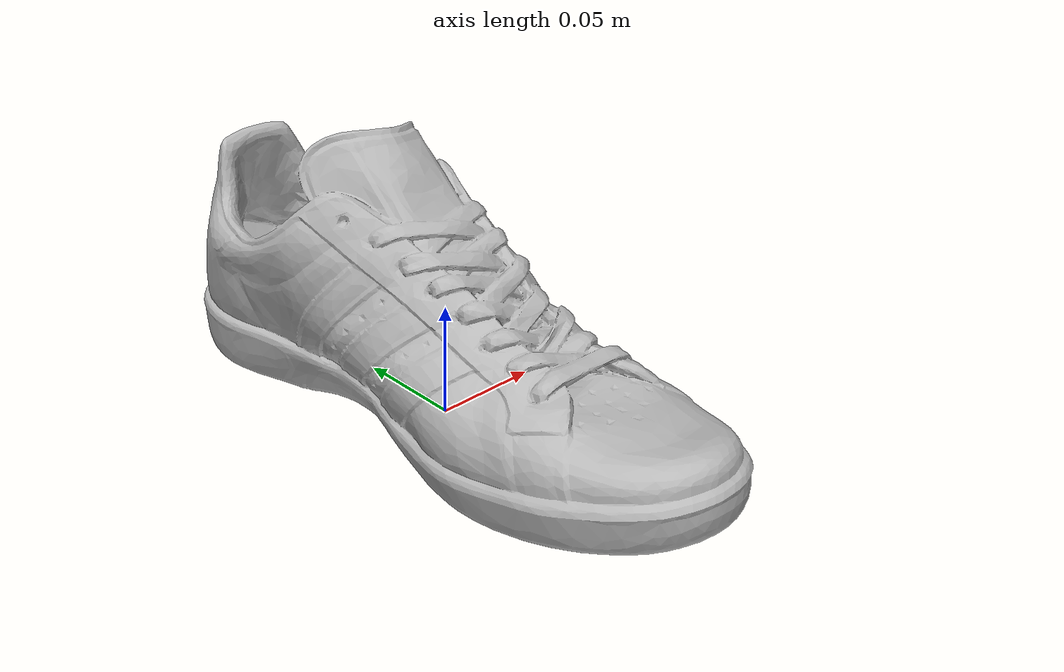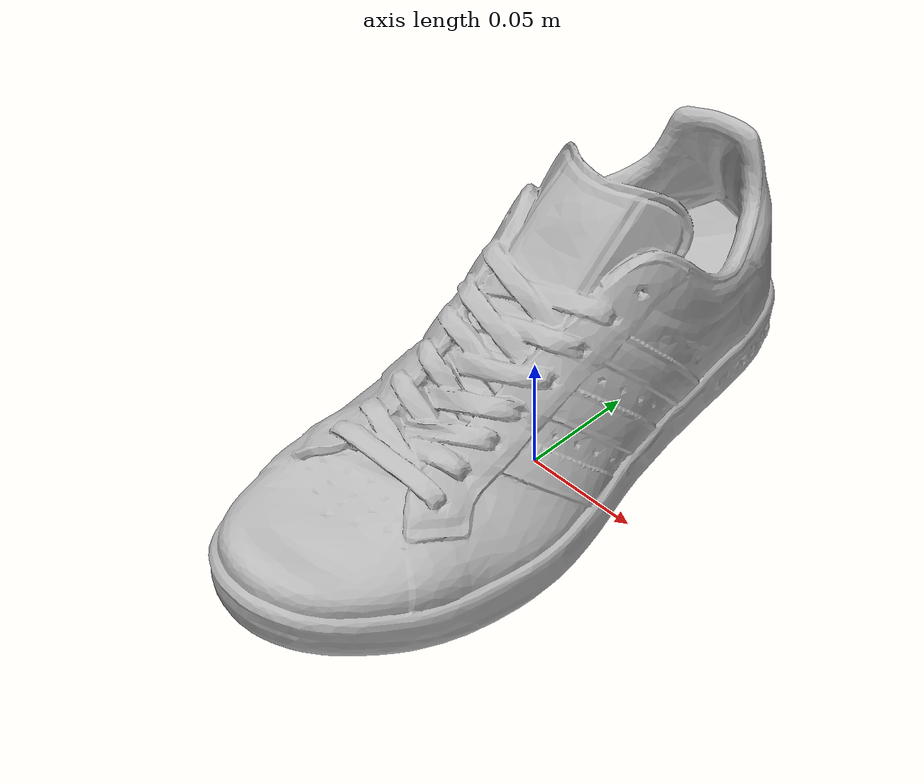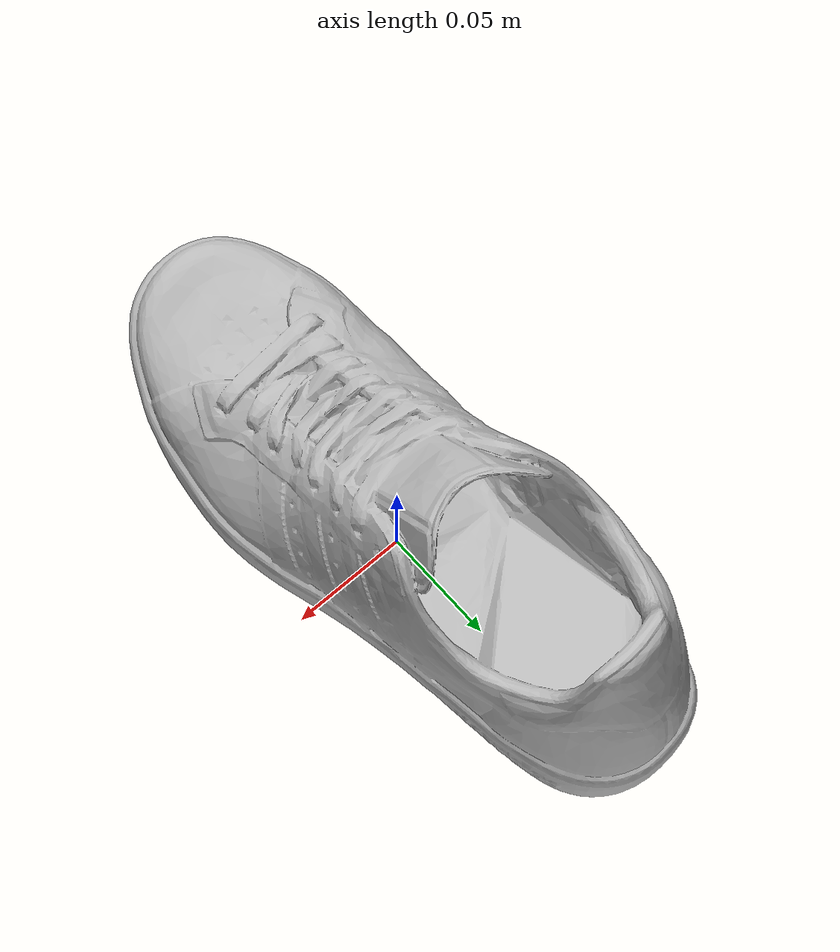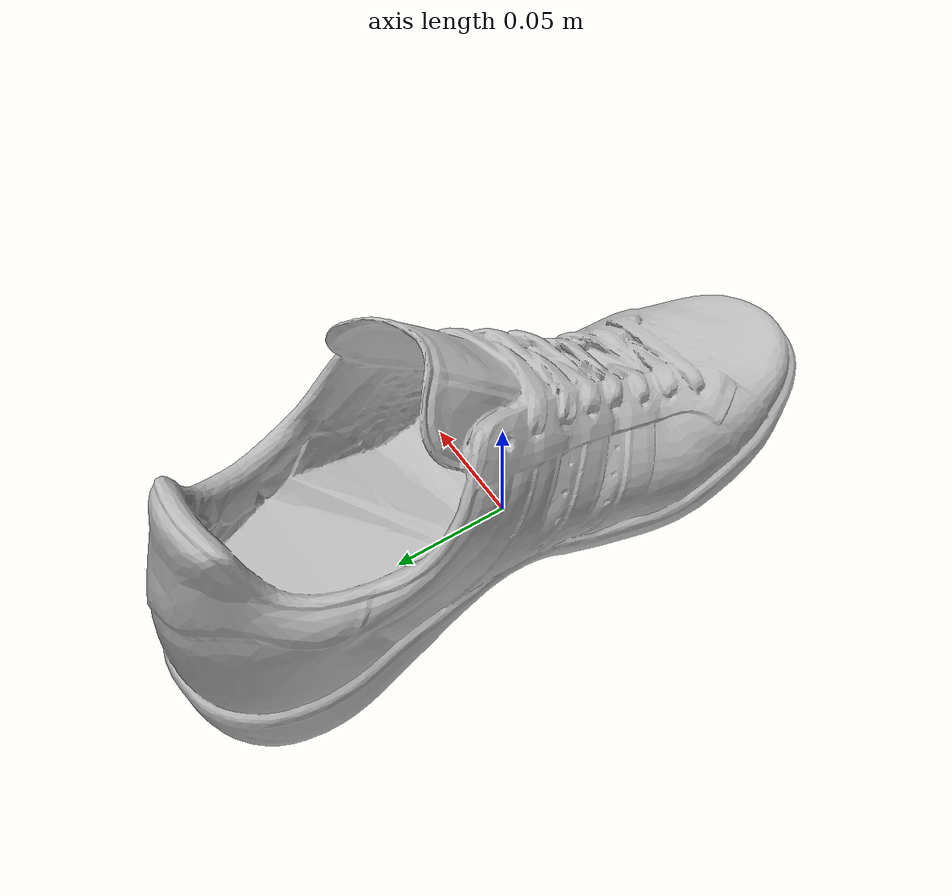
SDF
<?xml version="1.0" ?>
<sdf version="1.6">
  <world name='default'>
    <model name="shoe_left">
      <link name="link_left">
        <inertial>
          <mass>0.4</mass>
          <inertia>
            <ixx>1</ixx>
            <ixy>0</ixy>
            <ixz>0</ixz>
            <iyy>1</iyy>
            <iyz>0</iyz>
            <izz>1</izz>
          </inertia>
        </inertial>
        <visual name="visual">
          <geometry>
            <mesh>
              <uri>meshes/shoe_left.obj</uri>
            </mesh>
          </geometry>
        </visual>
        <collision name="collision_left">
          <pose>0 0 0.05 0 0 0</pose>
          <geometry>
            <box>
              <size>0.1 0.16 0.1</size>
            </box>
          </geometry>
        </collision>
      </link>
    </model>
  </world>
</sdf>
